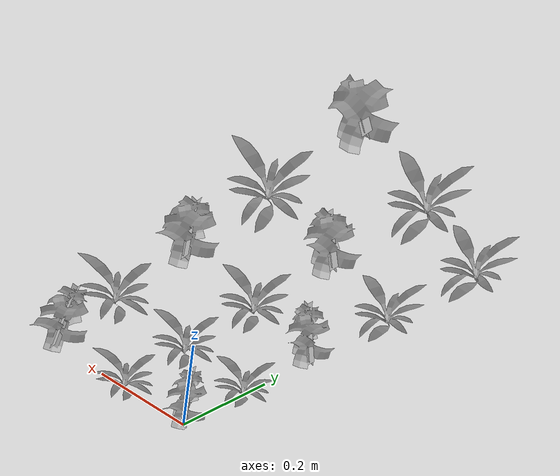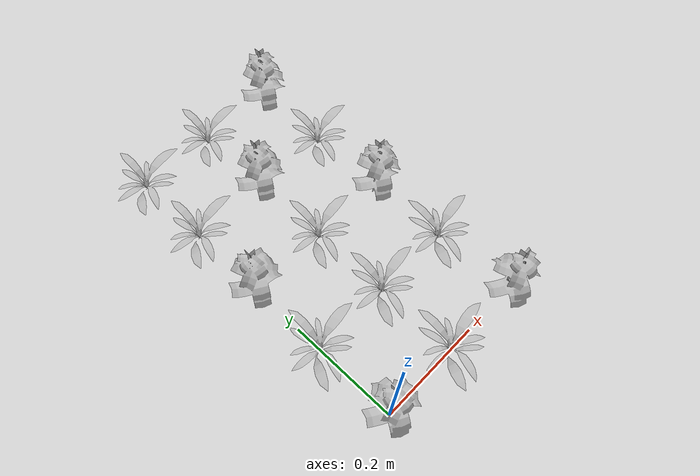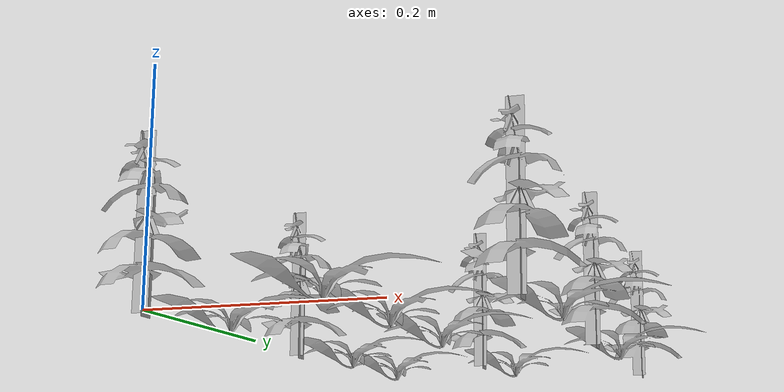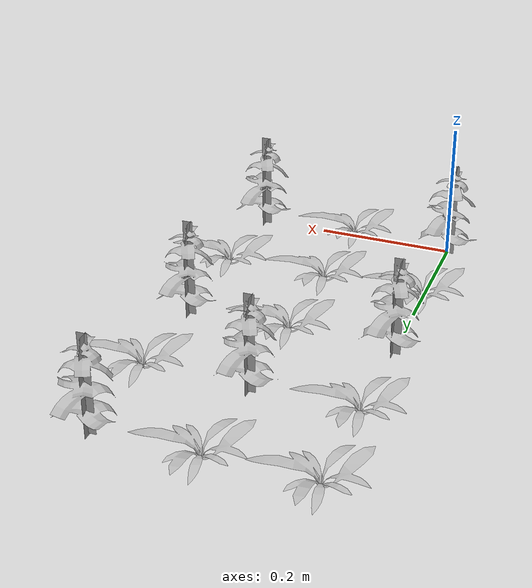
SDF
<?xml version="1.0" ?>
<sdf version="1.6">
  <model name="plant_cluster">
    <!-- Set static to true if you don't want the cluster to be affected by physics -->
    <static>true</static>
    <!-- Include the nettle model -->
    <include>
      <uri>model://nettle</uri>
      <pose>0 0.30 0 0 0 0</pose>
      <name>nettle_0000</name>
    </include>
    <!-- Include the unknown weed model -->
    <include>
      <uri>model://unknown_weed</uri>
      <pose>0 0.15 0 0 0 0</pose>
      <name>unknown_0000</name>
    </include>

    <include>
      <uri>model://unknown_weed</uri>
      <pose>0 0.60 0 0 0 0</pose>
      <name>unknown_0001</name>
    </include>

    <include>
      <uri>model://nettle</uri>
      <pose>0.30 0 0 0 0 0</pose>
      <name>nettle_0001</name>
    </include>

    <include>
      <uri>model://unknown_weed</uri>
      <pose>0 0.45 0 0 0 0</pose>
      <name>unknown_0002</name>
    </include>

    <include>
      <uri>model://nettle</uri>
      <pose>0 0 0 0 0 0</pose>
      <name>nettle_0002</name>
    </include>

    <!-- Include the unknown weed model -->
    <include>
      <uri>model://unknown_weed</uri>
      <pose>0.15 0.15 0 0 0 0</pose>
      <name>unknown_0003</name>
    </include>

    <include>
      <uri>model://unknown_weed</uri>
      <pose>0.15 0.30 0 0 0 0</pose>
      <name>unknown_0004</name>
    </include>

    <include>
      <uri>model://nettle</uri>
      <pose>0.15 0.45  0 0 0 0</pose>
      <name>nettle_0003</name>
    </include>

    <include>
      <uri>model://unknown_weed</uri>
      <pose>0.15 0.60 0 0 0 0</pose>
      <name>unknown_0005</name>
    </include>

    <include>
      <uri>model://nettle</uri>
      <pose>0.30 0.60 0 0 0 0</pose>
      <name>nettle_0004</name>
    </include>
    <!-- Include the unknown weed model -->
    <include>
      <uri>model://unknown_weed</uri>
      <pose>0.30 0.15 0 0 0 0</pose>
      <name>unknown_0006</name>
    </include>

    <include>
      <uri>model://unknown_weed</uri>
      <pose>0.30 0.45  0 0 0 0</pose>
      <name>unknown_0007</name>
    </include>

    <include>
      <uri>model://nettle</uri>
      <pose>0.30 0.30 0 0 0 0</pose>
      <name>nettle_0005</name>
    </include>

    <include>
      <uri>model://unknown_weed</uri>
      <pose>0.15 0 0 0 0 0</pose>
      <name>unknown_0008</name>
    </include>

  </model>
</sdf>

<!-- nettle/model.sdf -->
<sdf version="1.6">
  <model name="nettle">
    <static>false</static>
    <link name="link">
      <inertial>
        <mass>0.1</mass>
        <inertia>
          <ixx>0.0001881250</ixx>
          <ixy>0</ixy>
          <ixz>0</ixz>
          <iyy>0.0001881250</iyy>
          <iyz>0</iyz>
          <izz>0.00000125</izz>
        </inertia>
        <pose>0 0 0.005 0 0 0</pose>
      </inertial>
      <collision name='collision_stem'>
        <pose>0 0 0.075 0 0 0</pose>
        <geometry>
          <cylinder>
            <radius>0.005</radius>
            <length>0.15</length>
          </cylinder>
        </geometry>
        <max_contacts>10</max_contacts>
        <surface>
          <contact>
            <ode />
          </contact>
          <bounce />
          <friction>
            <ode>
              <mu>10</mu>
              <mu2>10</mu2>
            </ode>
          </friction>
        </surface>
      </collision>
      <collision name='collision_foot'>
        <pose>0 0 0 0 0 0</pose>
        <geometry>
          <cylinder>
            <radius>0.03</radius>
            <length>0.01</length>
          </cylinder>
        </geometry>
        <max_contacts>10</max_contacts>
        <surface>
          <contact>
            <ode />
          </contact>
          <bounce />
          <friction>
            <ode>
              <mu>10</mu>
              <mu2>10</mu2>
            </ode>
          </friction>
        </surface>
      </collision>
      <visual name="visual">
        <geometry>
          <mesh>
            <uri>model://nettle/meshes/nettle.dae</uri>
          </mesh>
        </geometry>
      </visual>
    </link>
  </model>
</sdf>

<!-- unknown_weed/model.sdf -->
<sdf version="1.6">
  <model name="unknown_weed">
    <static>true</static>
    <link name="link">
      <inertial>
        <mass>0.1</mass>
        <inertia>
          <ixx>0.0000658333</ixx>
          <ixy>0</ixy>
          <ixz>0</ixz>
          <iyy>0.0000658333</iyy>
          <iyz>0</iyz>
          <izz>0.000125</izz>
        </inertia>
        <pose>0 0 0.005 0 0 0 0 0</pose>
      </inertial>
      <collision name="collision_leaves">
        <geometry>
          <mesh>
            <uri>model://unknown_weed/meshes/unknown_weed.dae</uri>
          </mesh>
        </geometry>
        <max_contacts>10</max_contacts>
        <surface>
          <contact>
            <ode />
          </contact>
          <bounce />
          <friction>
            <ode>
              <mu>10</mu>
              <mu2>10</mu2>
            </ode>
          </friction>
        </surface>
      </collision>
      <collision name="collision_stem">
        <pose>0 0 0 0 0 0 0 0</pose>
        <geometry>
          <cylinder>
            <radius>0.03</radius>
            <length>0.005</length>
          </cylinder>
        </geometry>
        <max_contacts>10</max_contacts>
        <surface>
          <contact>
            <ode />
          </contact>
          <bounce />
          <friction>
            <ode>
              <mu>10</mu>
              <mu2>10</mu2>
            </ode>
          </friction>
        </surface>
      </collision>
      <visual name="visual">
        <geometry>
          <mesh>
            <uri>model://unknown_weed/meshes/unknown_weed.dae</uri>
          </mesh>
        </geometry>
        <material>
          <script>
            <uri>model://unknown_weed/materials/scripts/</uri>
            <uri>model://unknown_weed/materials/textures/</uri>
            <name>unknown_weed_leaf</name>
          </script>
        </material>
      </visual>
    </link>
  </model>
</sdf>
